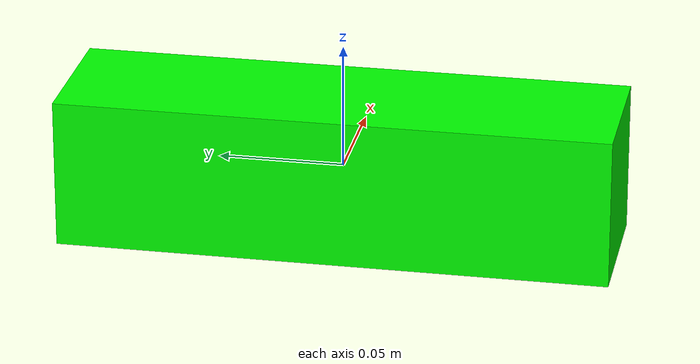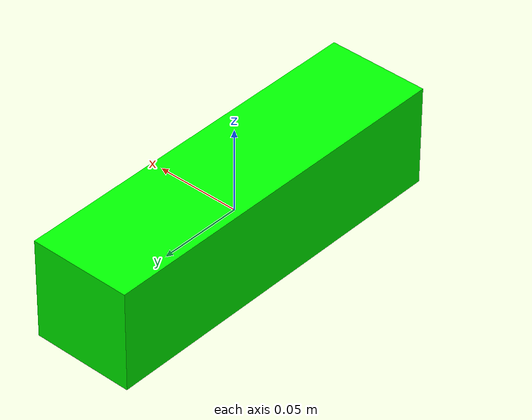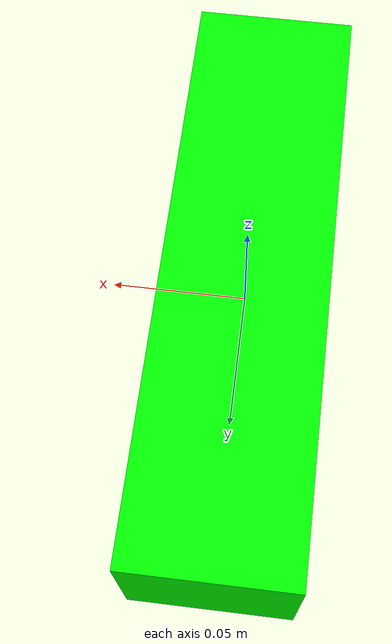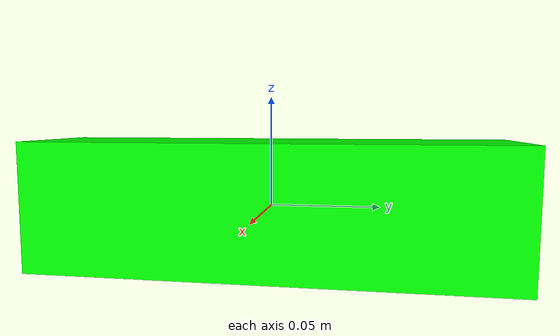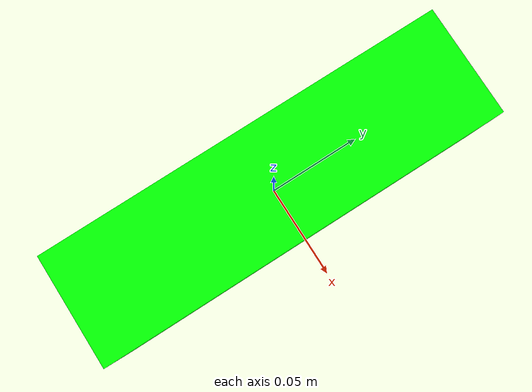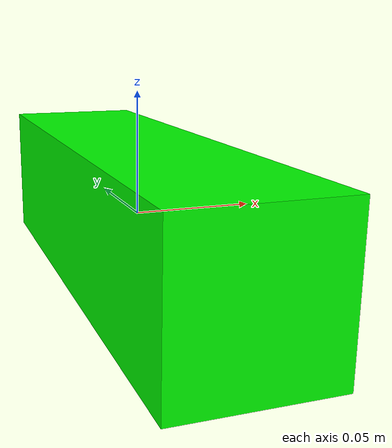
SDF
<?xml version="1.0"?>
<sdf version="1.7">
  <model name="block6">
    <pose> 0 0 0 0 0 0 </pose>
    <link name="block6_link">
      <inertial>
        <mass>0.2</mass>
        <inertia>
          <ixx>0.026022776914401833</ixx>
          <ixy>0.0</ixy>
          <ixz>0.0</ixz>
          <iyy>0.028155796674108682</iyy>
          <iyz>0.0</iyz>
          <izz>0.026022776914401833</izz>
        </inertia>
      </inertial>
      <collision name="collision">
        <geometry>
          <box>
            <size> 0.06 0.22 0.06 </size>
          </box>
        </geometry>
        <surface>
            <friction>
                <ode>
                    <mu>1.0</mu>
                    <mu2>1.0</mu2>
                </ode>
            </friction>
        </surface>
      </collision>
      <visual name="visual">
        <geometry>
          <box>
            <size> 0.06 0.22 0.06 </size>
          </box>
        </geometry>
        <material>
          <diffuse>0 1 0 1</diffuse>
        </material>
      </visual>
    </link>
  </model>
</sdf>
